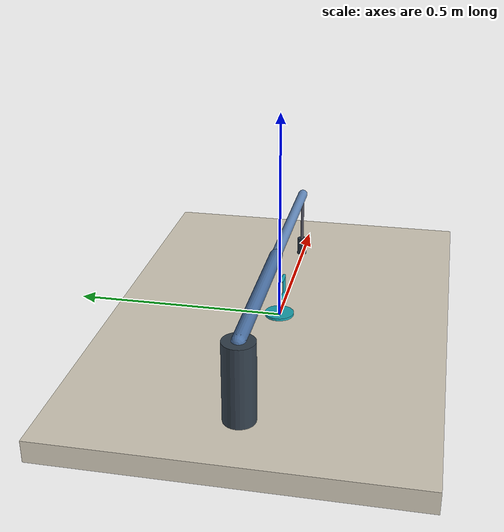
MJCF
<mujoco model="within_reach">
  <compiler angle="radian"/>
  <option timestep="0.0041666667" gravity="0 0 -9.81" integrator="implicitfast"/>
  <default>
    <joint damping="2"/>
    <geom friction="0.35 0.005 0.0001" solref="0.015 1"/>
  </default>
  <visual><global offwidth="640" offheight="480"/></visual>
  <worldbody>
    <light pos="0 -0.3 1.5" dir="0 0 -1"/>
    <camera name="overview" pos="0 -0.72 0.95" xyaxes="1 0 0 0 0.8 0.6"/>
    <geom name="table" type="box" pos="0 0 -0.025" size="0.6 0.4 0.025" rgba="0.85 0.82 0.75 1"/>
    <body name="arm_base" pos="-0.45 0 0.18">
      <geom type="cylinder" pos="0 0 -0.09" size="0.035 0.09" rgba="0.2 0.25 0.3 1" contype="0" conaffinity="0"/>
      <body name="link1">
        <joint name="shoulder" type="hinge" axis="0 0 1"/>
        <geom name="arm_link1_collision" type="capsule" fromto="0 0 0 0.4 0 0" size="0.015" mass="0.3" rgba="0.3 0.45 0.65 1" contype="1" conaffinity="1"/>
        <body name="link2" pos="0.4 0 0">
          <joint name="elbow" type="hinge" axis="0 0 1"/>
          <geom name="arm_link2_collision" type="capsule" fromto="0 0 0 0.4 0 0" size="0.012" mass="0.2" rgba="0.4 0.55 0.75 1" contype="1" conaffinity="1"/>
          <!-- Links stay above the cup; this slide extends a contact tool downward. -->
          <body name="pusher_body" pos="0.4 0 -0.15">
            <joint name="lift" type="slide" axis="0 0 1" limited="true" range="0 0.16" damping="4"/>
            <geom name="pusher" type="cylinder" size="0.012 0.022" mass="0.08" rgba="0.15 0.2 0.25 1" friction="0.6 0.005 0.0001"/>
            <geom name="pusher_shaft" type="capsule" fromto="0 0 0.022 0 0 0.15" size="0.004" mass="0.01" rgba="0.3 0.3 0.35 1"/>
            <site name="tip" size="0.005"/>
          </body>
        </body>
      </body>
    </body>
    <body name="cup" pos="0 0 0.004">
      <freejoint name="cup_free"/>
      <inertial pos="0 0 0.042" mass="0.12" diaginertia="0.00018 0.00018 0.00012"/>
      <geom name="cup_bottom" type="cylinder" size="0.035 0.003" rgba="0.1 0.65 0.7 1"/>
      <!-- Wall segments are inserted by simulator.py; the cup is hollow. -->
      <geom name="handle_lower" type="capsule" fromto="0.035 0 0.023 0.065 0 0.023" size="0.004" rgba="0.1 0.65 0.7 1"/>
      <geom name="handle_outer" type="capsule" fromto="0.065 0 0.023 0.065 0 0.070" size="0.004" rgba="0.1 0.65 0.7 1"/>
      <geom name="handle_upper" type="capsule" fromto="0.065 0 0.070 0.035 0 0.070" size="0.004" rgba="0.1 0.65 0.7 1"/>
    </body>
  </worldbody>
  <actuator>
    <position name="shoulder_motor" joint="shoulder" kp="100" kv="8"/>
    <position name="elbow_motor" joint="elbow" kp="100" kv="6"/>
    <position name="lift_motor" joint="lift" kp="150" kv="8"/>
  </actuator>
</mujoco>
